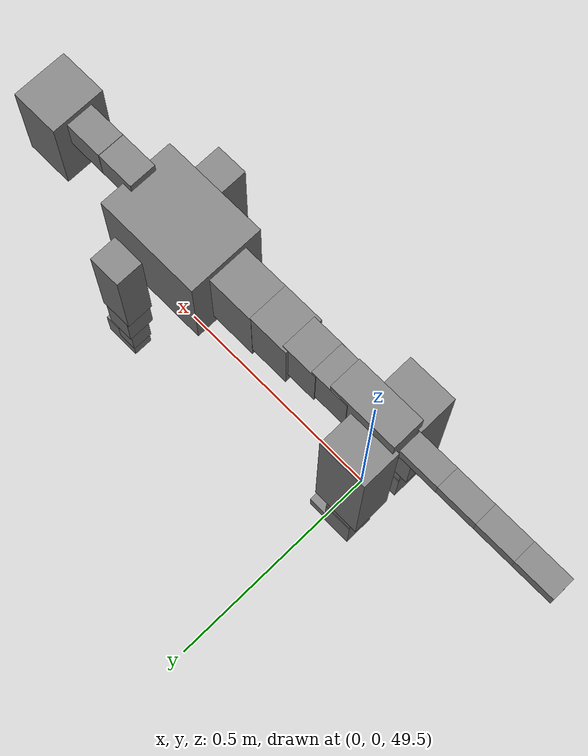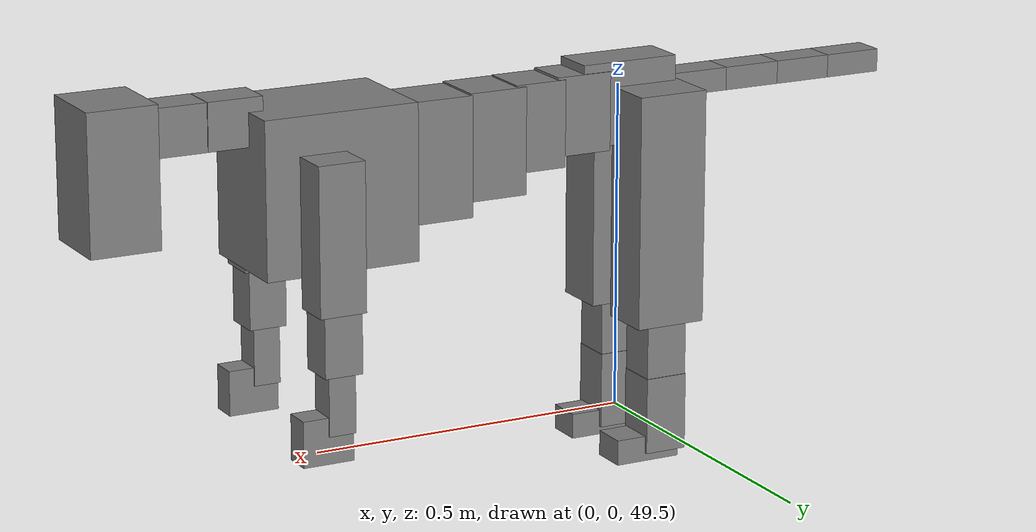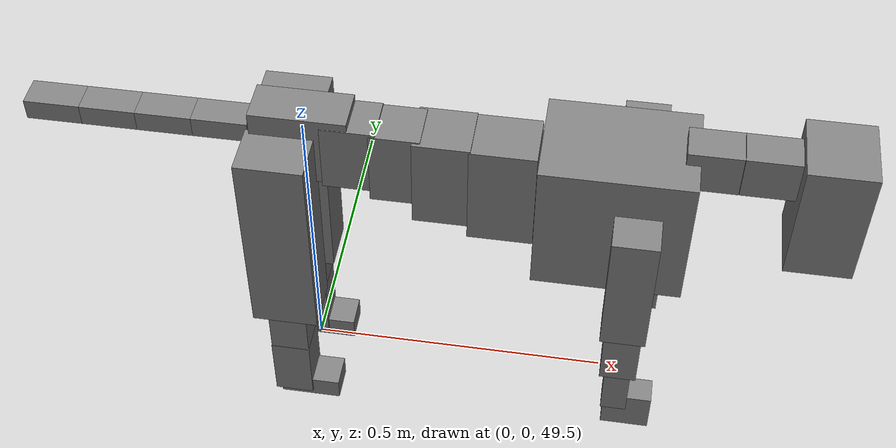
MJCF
<mujoco model="dog">

    <default>
        <joint armature="0.02" stiffness="1" damping="0.2" limited="true"/>
        <geom condim="3" friction="1 0.05 0.05" margin="0.01"/>
        <motor ctrllimited="true" ctrlrange="-1.0 1.0" forcelimited="true" gear="50"/>
    </default>

    <compiler inertiafromgeom="true" angle="radian"/>

    <option timestep="0.016" iterations="50" tolerance="1e-10" solver="Newton" jacobian="dense" cone="pyramidal"/>

    <size nconmax="20000" njmax="60000" nstack="5000000"/>
    <visual>
        <map force="0.1" zfar="30"/>
        <rgba haze="0.15 0.25 0.35 1"/>
        <quality shadowsize="2048"/>
        <global offwidth="800" offheight="800"/>
    </visual>

    <asset>
        <texture type="skybox" builtin="gradient" rgb1="0.3 0.5 0.7" rgb2="0 0 0" width="512" height="512"/>
        <texture name="texplane" type="2d" builtin="checker" rgb1=".2 .3 .4" rgb2=".1 0.15 0.2" width="512" height="512"
                 mark="cross" markrgb=".8 .8 .8"/>
        <texture name="texgeom" type="cube" builtin="flat" mark="cross" width="127" height="1278" rgb1="0.8 0.6 0.4"
                 rgb2="0.8 0.6 0.4" markrgb="1 1 1" random="0.01"/>

        <material name="matplane" reflectance="0.3" texture="texplane" texrepeat="1 1" texuniform="true"/>
        <material name="matgeom" texture="texgeom" texuniform="true" rgba="0.8 0.6 .4 1"/>
    </asset>

    <worldbody>
        <geom name="floor" pos="0 0 0" size="0 0 .25" type="plane" material="matplane" condim="3"/>

        <light directional="false" diffuse=".2 .2 .2" specular="0 0 0" pos="0 0 5" dir="0 0 -1" castshadow="false"/>
        <light mode="targetbodycom" target="torso" directional="false" diffuse=".8 .8 .8" specular="0.3 0.3 0.3"
               pos="0 0 4.0" dir="0 0 -1"/>

        <body name="root" pos="0 0 50">
            <freejoint name="root_1"/>
            <geom type="box" pos="0 0 -0.02" size="0.0774  0.0358  0.063" density="2030"/>

            <body name="spine1" pos="0.054 0 0">
                <joint name="spine1_y" axis="0 1 0" range="0 0.7" limited="true"/>
                <geom type="box" pos="0.02375 0 -0.03" size="0.04375  0.0375  0.05985" density="2030"/>

                <body name="spine2" pos="0.0612 0 0">
                    <joint name="spine2_y" axis="0 1 0" range="-0.15 0.15" limited="true"/>
                    <geom type="box" pos="0.03555  0  -0.04" size="0.04055  0.039  0.06615" density="2030"/>

                    <body name="spine3" pos="0.0730 0 0">
                        <joint name="spine3_y" axis="0 1 0" range="-0.15 0.15" limited="true"/>
                        <geom type="box" pos="0.03555  0  -0.057" size="0.04555  0.0445  0.081" density="2030"/>

                        <body name="spine4" pos="0.0780 0 0">
                            <joint name="spine4_y" axis="0 1 0" range="-0.15 0.15" limited="true"/>
                            <geom type="box" pos="0.05265  0  -0.07" size="0.05265  0.045  0.09135" density="2030"/>

                            <body name="torso" pos="0.1082 0 0">
                                <joint name="torso_y" axis="0 1 0" range="-0.15 0.15" limited="true"/>
                                <geom type="box" pos="0.11925  0  -0.085" size="0.11925  0.085  0.11745"
                                      density="2030"/>

                                <body name="neck1" pos="0.2160  0   0.0180">
                                    <joint name="neck1_y" axis="0 1 0" range="-1.2  -1" limited="true"/>
                                    <geom type="box" pos="0.0423  0  0" size="0.0423  0.03  0.036" density="2325"/>

                                    <body name="neck2" pos="0.0853  0  0">
                                        <joint name="neck2_y" axis="0 1 0" range="0.1  0" limited="true"/>
                                        <geom type="box" pos="0.0423  0  0" size="0.0423  0.03  0.036" density="2325"/>

                                        <body name="head" pos="0.0853  0  0">
                                            <joint name="head_y" axis="0 1 0" range="-0.3  -0.2" limited="true"/>
                                            <geom type="box" pos="0.0531  0  -0.055" size="0.0531  0.06  0.1044"
                                                  density="4030"/>

                                        </body>
                                    </body>
                                </body>

                                <body name="front_shoulder" pos="0.156  0   -0.0480">
                                    <joint name="front_shoulder_y" axis="0 1 0" range="-1 1.5" limited="true"/>
                                    <geom type="box" pos="0 0.13 -0.0839" size="0.0359  0.0307  0.1106" density="1158"/>
                                    <geom type="box" pos="0 -0.13 -0.0839" size="0.0359  0.0307  0.1106"
                                          density="1158"/>

                                    <body name="front_elbow" pos="0  0  -0.1678">
                                        <joint name="front_elbow_y" axis="0 1 0" range="-2 0" limited="true"/>
                                        <geom type="box" pos="0 0.13 -0.0580" size="0.0292  0.0298  0.0580"
                                              density="1081"/>
                                        <geom type="box" pos="0 -0.13 -0.0580" size="0.0292  0.0298  0.0580"
                                              density="1081"/>

                                        <body name="front_wrist" pos="0  0  -0.1159">
                                            <joint name="front_wrist_y" axis="0 1 0" range="-0.2 0" limited="true"/>
                                            <geom type="box" pos="0 0.13 -0.0378" size="0.0208  0.0232  0.0509"
                                                  density="1664"/>
                                            <geom type="box" pos="0 -0.13 -0.0378" size="0.0208  0.0232  0.0509"
                                                  density="1664"/>

                                            <body name="front_finger_end" pos="0  0  -0.0756">
                                                <joint name="front_finger_y" axis="0 1 0" range="-0.4 1"
                                                       limited="true"/>
                                                <geom type="box" pos="0.0214  0.13  -0.0196"
                                                      size="0.0392  0.0214  0.0346" density="1515"/>
                                                <geom type="box" pos="0.0214  -0.13  -0.0196"
                                                      size="0.0392  0.0214  0.0346" density="1515"/>

                                            </body>

                                        </body>
                                    </body>
                                </body>

                            </body>
                        </body>
                    </body>
                </body>
            </body>

            <body name="back_hip" pos="-0.03 0 -0.018">
                <joint name="back_hip_y" axis="0 1 0" range="-1.5 0.3" limited="true"/>
                <geom type="box" pos="0 0.07 -0.1543" size="0.0547  0.0429  0.1771" density="1154"/>
                <geom type="box" pos="0 -0.07 -0.1543" size="0.0547  0.0429  0.1771" density="1154"/>

                <body name="back_knee" pos="0  0  -0.3085">
                    <joint name="back_knee_y" axis="0 1 0" range="0 2.8" limited="true"/>
                    <geom type="box" pos="0 0.07 -0.0586" size="0.0323  0.0318  0.0741" density="1227"/>
                    <geom type="box" pos="0 -0.07 -0.0586" size="0.0323  0.0318  0.0741" density="1227"/>

                    <body name="back_ankle" pos="0  0  -0.1171">
                        <joint name="back_ankle_y" axis="0 1 0" range="-2.2 0" limited="true"/>
                        <geom type="box" pos="0 0.07 -0.0473" size="0.0329  0.0329  0.0586" density="1284"/>
                        <geom type="box" pos="0 -0.07 -0.0473" size="0.0329  0.0329  0.0586" density="1284"/>

                        <body name="back_toe_end" pos="0  0  -0.0946">
                            <joint name="back_toe_y" axis="0 1 0" range="-0.4 1" limited="true"/>
                            <geom type="box" pos="0.0281  0.07  -0.0043" size="0.0515  0.0281  0.0193" density="1515"/>
                            <geom type="box" pos="0.0281  -0.07  -0.0043" size="0.0515  0.0281  0.0193" density="1515"/>

                        </body>
                    </body>
                </body>
            </body>

            <body name="tail1" pos="-0.074 0 -0.006">
                <joint name="tail1_y" axis="0 1 0" range="-0.2 0.2" limited="true"/>
                <geom type="box" pos="-0.0536  0  0" size="0.045  0.025  0.0175" density="1587"/>

                <body name="tail2" pos="-0.09 0 0">
                    <joint name="tail2_y" axis="0 1 0" range="-0.2 0.2" limited="true"/>
                    <geom type="box" pos="-0.0536  0  0" size="0.045  0.025  0.0175" density="1587"/>

                    <body name="tail3" pos="-0.09 0 0">
                        <joint name="tail3_y" axis="0 1 0" range="-0.2 0.2" limited="true"/>
                        <geom type="box" pos="-0.0536  0  0" size="0.045  0.025  0.0175" density="1587"/>

                        <body name="tail4" pos="-0.09 0 0">
                            <joint name="tail4_y" axis="0 1 0" range="-0.2 0.2" limited="true"/>
                            <geom type="box" pos="-0.0536  0  0" size="0.045  0.025  0.0175" density="1587"/>

                        </body>
                    </body>
                </body>
            </body>
        </body>
    </worldbody>

    <actuator>
        <motor joint="spine1_y" forcerange="-150 150     "/>
        <motor joint="spine2_y" forcerange="-150 150     "/>
        <motor joint="spine3_y" forcerange="-150 150     "/>
        <motor joint="spine4_y" forcerange="-150 150     "/>
        <motor joint="torso_y" forcerange="-150 150     "/>
        <motor joint="neck1_y" forcerange="-100 100       "/>
        <motor joint="neck2_y" forcerange="-100 100       "/>
        <motor joint="head_y" forcerange="-150 150       "/>
        <motor joint="front_shoulder_y" forcerange="-157.41 146.97"/>
        <motor joint="front_elbow_y" forcerange="-135.86 181.21"/>
        <motor joint="front_wrist_y" forcerange="-61.80 123.50"/>
        <motor joint="front_finger_y" forcerange="-41.32 32.66"/>
        <motor joint="back_hip_y" forcerange="-382.19 389.53"/>
        <motor joint="back_knee_y" forcerange="-335.58 327.01"/>
        <motor joint="back_angle_y" forcerange="-244.90 181.59"/>
        <motor joint="back_toe_y" forcerange="-97.33 47.36"/>
        <motor joint="tail1_y" forcerange="-50 50     "/>
        <motor joint="tail2_y" forcerange="-50 50     "/>
        <motor joint="tail3_y" forcerange="-50 50     "/>
        <motor joint="tail4_y" forcerange="-50 50     "/>
    </actuator>
</mujoco>
